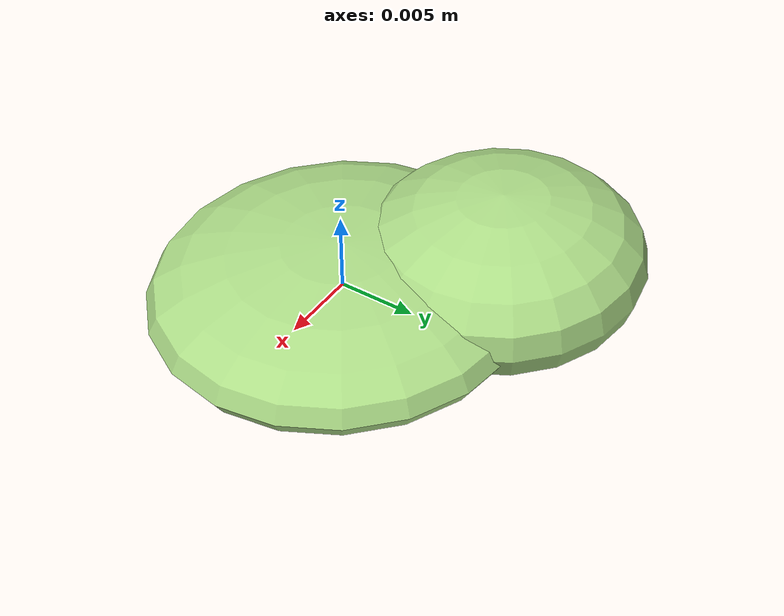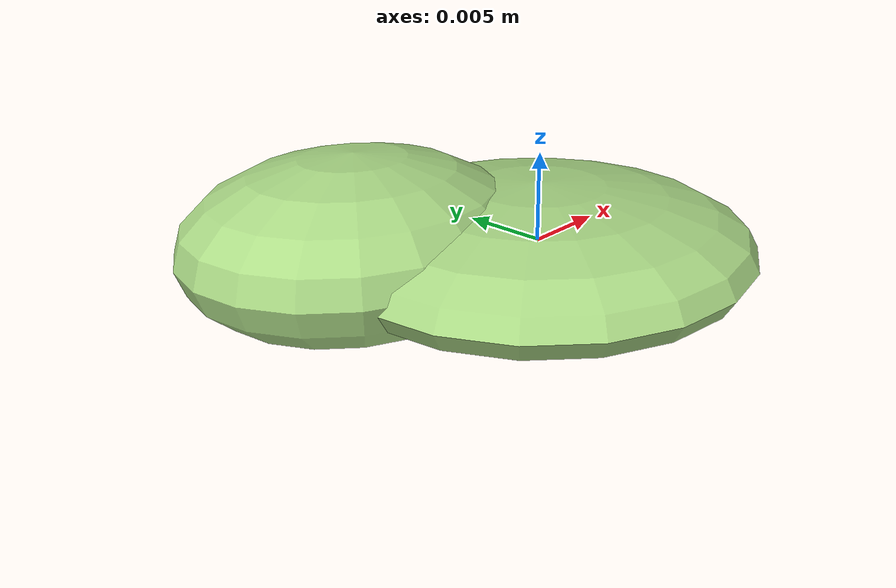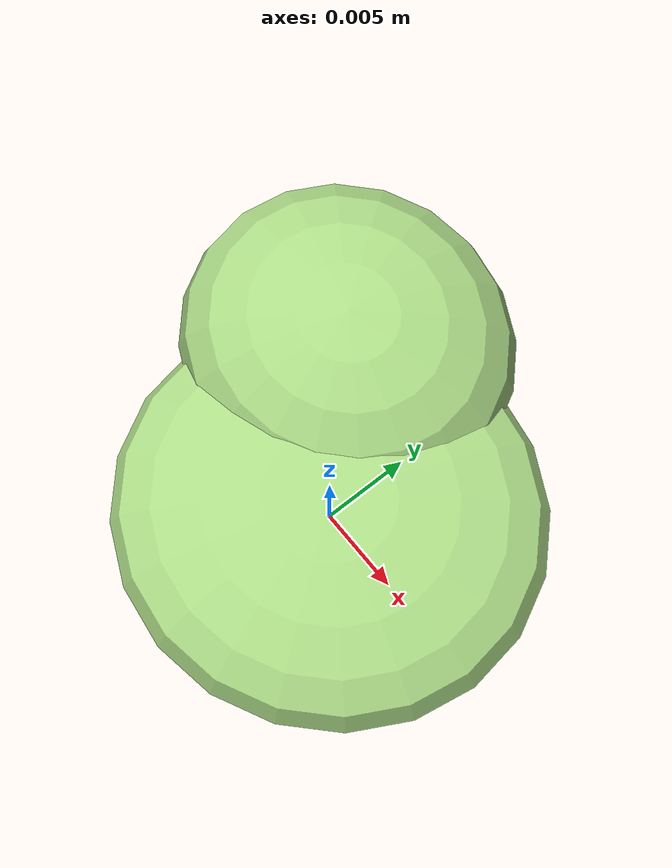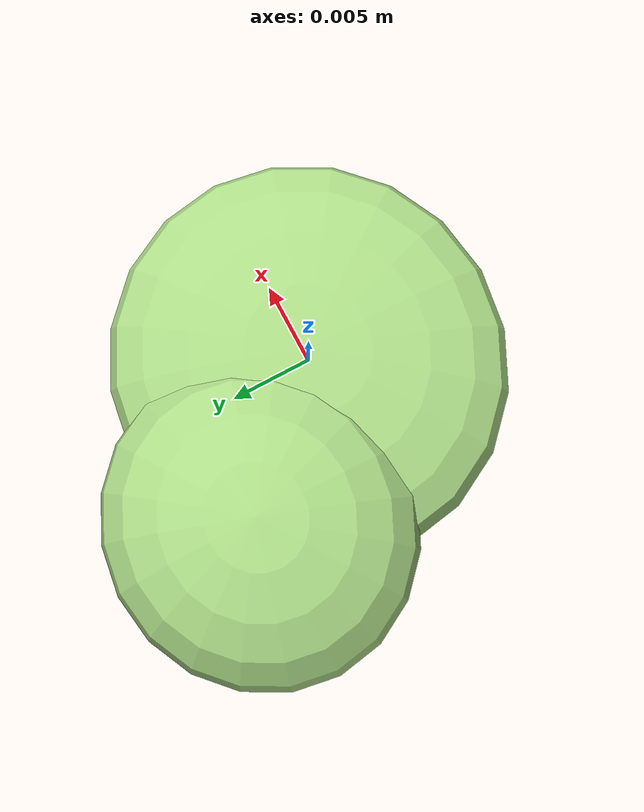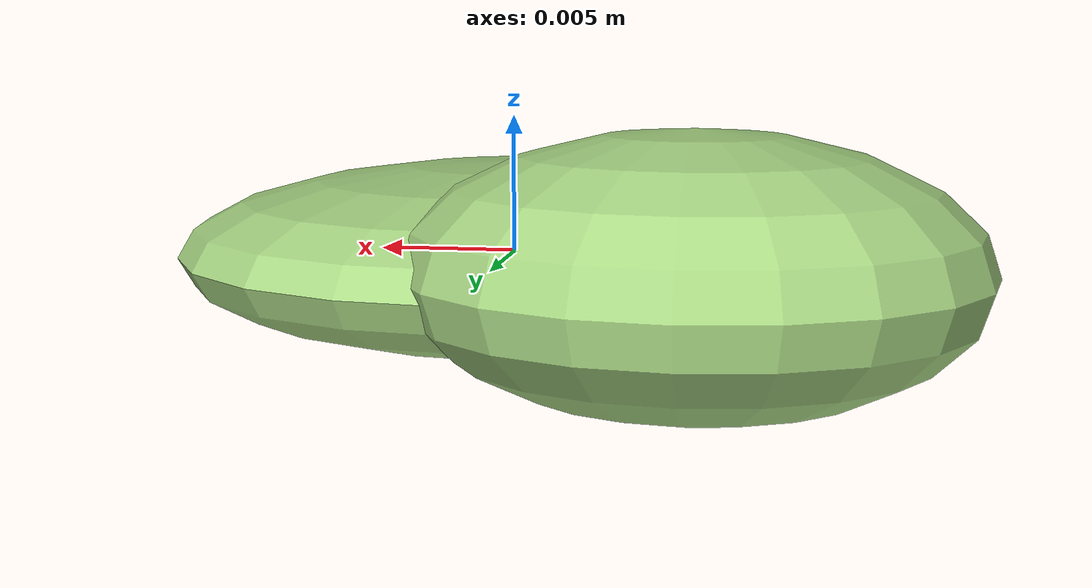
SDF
<?xml version="1.0" ?>
<!-- |    This document was autogenerated by xmacro from data/veggie_template/veggie_base.sdf.xacro  | -->
<!-- |    EDITING THIS FILE BY HAND IS NOT RECOMMENDED                                               | -->
<sdf version="1.8">
	<!-- Parameters -->
	<!-- Base -->
	<!-- Joint 0 -->
	<!-- Link 1 -->
	<!-- Joint 1 -->
	<!-- Link 2 -->
	<!-- Primitives -->
	<!-- All dimensions are half -->
	<!-- Object -->
	<model name="veggie">
		<!-- link0 -->
		<link name="link0">
			<inertial>
				<mass>0.0020271476385579057</mass>
				<inertia>
					<ixx>6.091645889169654e-08</ixx>
					<ixy>0</ixy>
					<ixz>0</ixz>
					<iyy>6.600747879925288e-08</iyy>
					<iyz>0</iyz>
					<izz>1.1792903990447759e-07</izz>
				</inertia>
			</inertial>
			<visual name="link0_visual">
				<pose>0 0 0 0 0 0</pose>
				<geometry>
					<ellipsoid>
						<radii>0.012317293253541164 0.011796550816115435 0.0033306226467345822</radii>
					</ellipsoid>
				</geometry>
				<material>
					<ambient>0.659 0.839 0.514 1</ambient>
					<diffuse>0.659 0.839 0.514 1</diffuse>
					<specular>0 0 0 0</specular>
					<emissive>0 0 0 1</emissive>
				</material>
			</visual>
			<collision name="link0_collision">
				<pose>0 0 0 0 0 0 </pose>
				<geometry>
					<ellipsoid>
						<radii>0.012317293253541164 0.011796550816115435 0.0033306226467345822</radii>
					</ellipsoid>
				</geometry>
			</collision>
		</link>
		<!-- link1 -->
		<joint name="joint0" type="fixed">
			<pose relative_to="link0">-0.007137393181412785 0.006945925421225194 0.0004567125087480733 0.0 0.0 0.0</pose>
			<parent>link0</parent>
			<child>link1</child>
		</joint>
		<link name="link1">
			<pose relative_to="joint0">0 0 0 0 0 0</pose>
			<inertial>
				<mass>0.0017565556919734192</mass>
				<inertia>
					<ixx>3.700732696072461e-08</ixx>
					<ixy>0</ixy>
					<ixz>0</ixz>
					<iyy>4.132604658332147e-08</iyy>
					<iyz>0</iyz>
					<izz>6.278690128774668e-08</izz>
				</inertia>
			</inertial>
			<visual name="link1_visual">
				<pose>0 0 0 0 0 0</pose>
				<geometry>
					<ellipsoid>
						<radii>0.009772788320801381 0.009122184174875807 0.004703866315589597</radii>
					</ellipsoid>
				</geometry>
				<material>
					<ambient>0.659 0.839 0.514 1</ambient>
					<diffuse>0.659 0.839 0.514 1</diffuse>
					<specular>0 0 0 0</specular>
					<emissive>0 0 0 1</emissive>
				</material>
			</visual>
			<collision name="link1_collision">
				<pose>0 0 0 0 0 0 </pose>
				<geometry>
					<ellipsoid>
						<radii>0.009772788320801381 0.009122184174875807 0.004703866315589597</radii>
					</ellipsoid>
				</geometry>
			</collision>
		</link>
		<!-- link2 -->
	</model>
</sdf>
